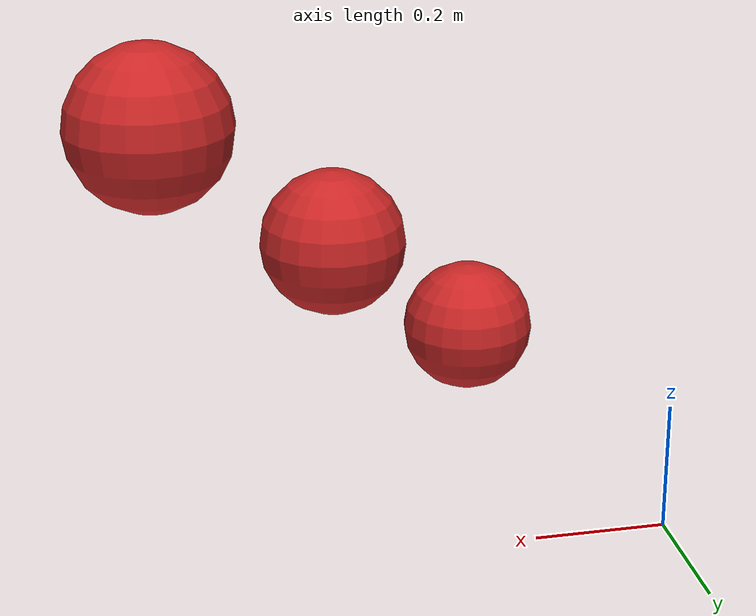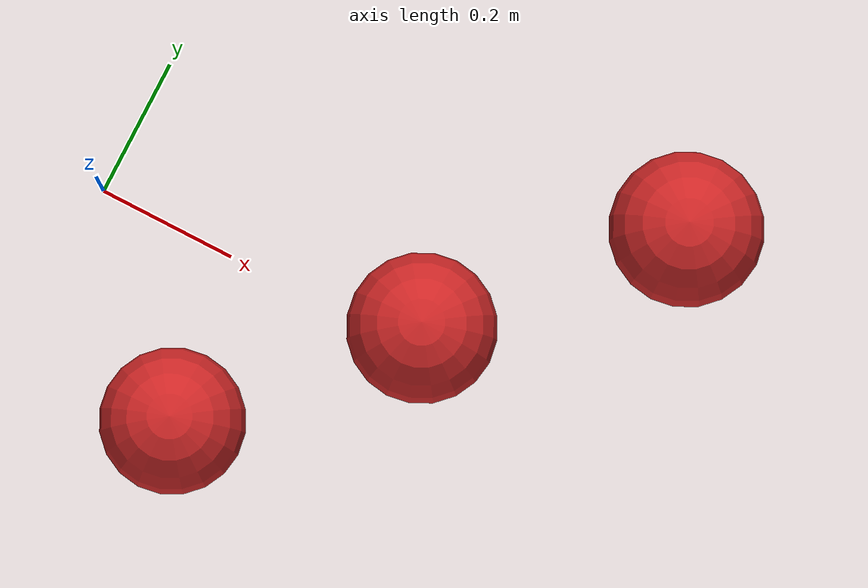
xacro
<?xml version="1.0" ?>
<robot name="obstacles" xmlns:xacro="http://ros.org/wiki/xacro">
    <xacro:arg name="radius" default="0.1"/>
    <link name="static_1">
        <collision>
        <origin rpy="0 0 0" xyz="0.5 0 0.5"/>
        <geometry>
            <sphere radius="$(arg radius)"/>
        </geometry>
        </collision>
        <visual>
        <origin rpy="0 0 0" xyz="0.5 0 0.5"/>
        <geometry>
            <sphere radius="$(arg radius)"/>
        </geometry>
        <material name="red"/>
        </visual>
    </link>
    <link name="static_2">
        <collision>
        <origin rpy="0 0 0" xyz="0.75 0.25 0.75"/>
        <geometry>
            <sphere radius="$(arg radius)"/>
        </geometry>
        </collision>
        <visual>
        <origin rpy="0 0 0" xyz="0.75 0.25 0.75"/>
        <geometry>
            <sphere radius="$(arg radius)"/>
        </geometry>
        <material name="red"/>
        </visual>
    </link>
    <link name="static_3">
        <collision>
        <origin rpy="0 0 0" xyz="0.25 -0.25 0.25"/>
        <geometry>
            <sphere radius="$(arg radius)"/>
        </geometry>
        </collision>
        <visual>
        <origin rpy="0 0 0" xyz="0.25 -0.25 0.25"/>
        <geometry>
            <sphere radius="$(arg radius)"/>
        </geometry>
        <material name="red"/>
        </visual>
    </link>
    <link name="world"/>
    <joint name="fixed_joint_1" type="fixed">
        <parent link="world"/>
        <child link="static_1"/>
        <origin rpy="0 0 0" xyz="0 0 0"/>
    </joint>
    <joint name="fixed_joint_2" type="fixed">
        <parent link="world"/>
        <child link="static_2"/>
        <origin rpy="0 0 0" xyz="0 0 0"/>
    </joint>
    <joint name="fixed_joint_3" type="fixed">
        <parent link="world"/>
        <child link="static_3"/>
        <origin rpy="0 0 0" xyz="0 0 0"/>
    </joint>
</robot>
